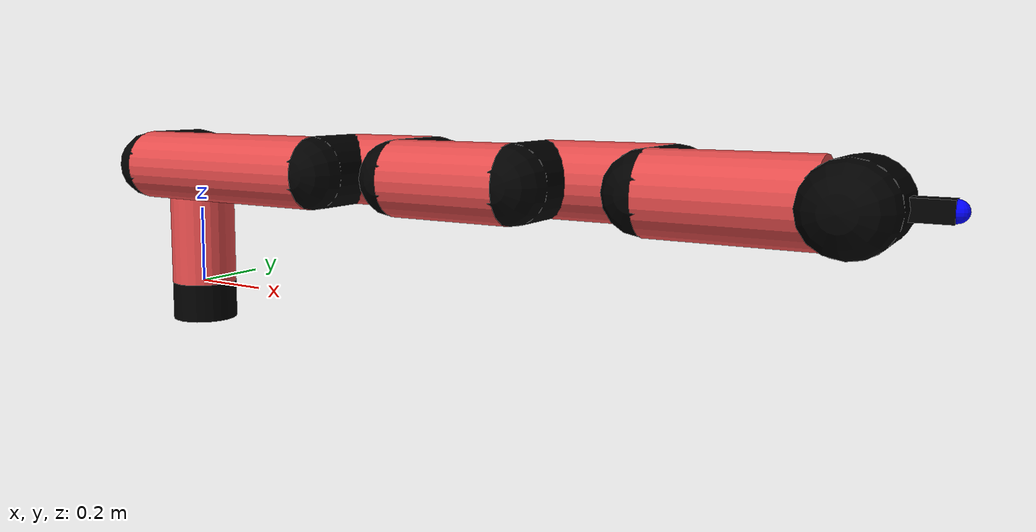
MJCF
<mujoco model="manipulator">
		<compiler angle="degree" coordinate="local" inertiafromgeom="auto" meshdir="meshes/"/>
		<option gravity="0 0 0" integrator="RK4" iterations="30" timestep="0.01"/>

		<default>
		<joint armature="1" limited="true" stiffness="10" damping="15" frictionloss="5.0"/>
		<geom conaffinity="1" condim="3" contype="1" friction=".5 .1 .1" margin="0.002"/>
		<motor ctrllimited="true"/>
		<position ctrllimited="true"/>
		</default>

		<asset>
		<texture builtin="gradient" height="100" rgb1="1.0 1.0 1.0" rgb2="1.0 1.0 1.0" type="skybox" width="100"/>
		<texture builtin="flat" height="32" name="arm_tex" rgb1="0.9 0.3 0.3" type="2d" width="32"/>
		<texture builtin="flat" height="32" name="gripper_tex" rgb1="0.0 0.0 0.0" type="cube" width="32"/>

		<material name="arm_mat" shininess="0.1" specular="0.1" texture="arm_tex"/>
		<material name="gripper_mat" shininess="1" specular="1" texture="gripper_tex"/>
		</asset>

		<worldbody>
		<light cutoff="45" diffuse=".8 .8 .8" dir="0 0.16 -1" directional="false" name="light" pos="0 -2.0 8.0" specular="0.3 0.3 0.3"/>

		<body name="base_link" pos="0 0 -0.1">
		<geom fromto="0 0 0 0 0 0.1" material="arm_mat" name="base_link" rgba="0.0 0.0 0.0 1" size="0.085" type="cylinder"/>
		</body>

		<body name="l1" pos="0 0 0">
<geom fromto="0 0 0 0 0 0.33" material="arm_mat" name="l1" rgba="0.9 0.3 0.3 1" size="0.085" type="cylinder"/>
<geom fromto="0 0 0.33 0 -0.16 0.33" material="arm_mat" name="l1_ex" rgba="0.0 0.0 0.0 1" size="0.085" type="capsule"/>
<joint axis="0 0 1" name="j1" pos="0 0 0" range="-90 90" damping="25.77" frictionloss="8.23"/>

<body name="l2" pos="0 -0.16 0.33">
<geom fromto="0 0 0 0.53 0 0" material="arm_mat" name="l2" rgba="0.9 0.3 0.3 1" size="0.085" type="cylinder"/>
<geom fromto="0.53 0 0 0.53 0.16 0" material="arm_mat" name="l2_ex" rgba="0.0 0.0 0.0 1" size="0.085" type="capsule"/>
<joint axis="0.0 1.0 0.0" name="j2" pos="0 0 0" range="-90 60" damping="36.53" frictionloss="8.01"/>

<body name="l3" pos="0.53 0.16 0">
<geom fromto="0 0 0 0.24 0 0" material="arm_mat" name="l3" rgba="0.9 0.3 0.3 1" size="0.085" type="cylinder"/>
<geom fromto="0.24 0 0 0.24 -0.16 0" material="arm_mat" name="l3_ex" rgba="0.0 0.0 0.0 1" size="0.085" type="capsule"/>
<joint axis="0.0 1.0 0.0" name="j3" pos="0 0 0" range="-30 60" damping="31.25" frictionloss="10.72"/>

<body name="l4" pos="0.24 -0.16 0">
<geom fromto="0 0 0 0.28 0 0" material="arm_mat" name="l4" rgba="0.9 0.3 0.3 1" size="0.085" type="cylinder"/>
<geom fromto="0.28 0 0 0.28 0.16 0" material="arm_mat" name="l4_ex" rgba="0.0 0.0 0.0 1" size="0.085" type="capsule"/>
<joint axis="0.0 1.0 0.0" name="j4" pos="0 0 0" range="-30 60" damping="28.71" frictionloss="11.61"/>

<body name="l5" pos="0.28 0.16 0">
<geom fromto="0 0 0 0.29 0 0" material="arm_mat" name="l5" rgba="0.9 0.3 0.3 1" size="0.085" type="cylinder"/>
<geom fromto="0.29 0 0 0.29 -0.16 0" material="arm_mat" name="l5_ex" rgba="0.0 0.0 0.0 1" size="0.085" type="capsule"/>
<joint axis="0.0 1.0 0.0" name="j5" pos="0 0 0" range="-30 60" damping="33.66" frictionloss="9.68"/>

<body name="l6" pos="0.29 -0.16 0">
<geom fromto="0 0 0 0.32 0 0" material="arm_mat" name="l6" rgba="0.9 0.3 0.3 1" size="0.085" type="cylinder"/>
<joint axis="0.0 1.0 0.0" name="j6" pos="0 0 0" range="-30 60" damping="31.62" frictionloss="9.79"/>

<body name="gripper" pos="0.32 0 0">
<geom fromto="0.05 -0.07 0 0.05 0.07 0" material="gripper_mat" name="gripper" rgba="0.0 0.0 0.0 1" size="0.085" type="capsule"/><joint axis="1 0 0" name="j7" pos="0 0 0" range="-90 90" damping="15" frictionloss="5.0"/><body name="finger" pos="0.1 0 0">
<geom fromto="0 0.0 0 0.1 0.0 0" material="gripper_mat" name="finger" rgba="0.0 0.0 0.0 1" size="0.020 0.06 0.06" type="box"/>
</body>
<site name="current" pos="0.2 0. 0.0" rgba="0. 0. 1.0 1" size="0.02" type="sphere"/>
</body>
</body>
</body>
</body>
</body>
</body>
</body>
</worldbody>
<actuator>
<motor ctrllimited="true" ctrlrange="-1.0 1.0" joint="j1" gear="82.39"/>
<motor ctrllimited="true" ctrlrange="-1.0 1.0" joint="j2" gear="85.82"/>
<motor ctrllimited="true" ctrlrange="-1.0 1.0" joint="j3" gear="76.67"/>
<motor ctrllimited="true" ctrlrange="-1.0 1.0" joint="j4" gear="93.99"/>
<motor ctrllimited="true" ctrlrange="-1.0 1.0" joint="j5" gear="77.62"/>
<motor ctrllimited="true" ctrlrange="-1.0 1.0" joint="j6" gear="79.12"/>
<motor ctrllimited="true" ctrlrange="-1.0 1.0" joint="j7" gear="80"/>
</actuator>
</mujoco>
